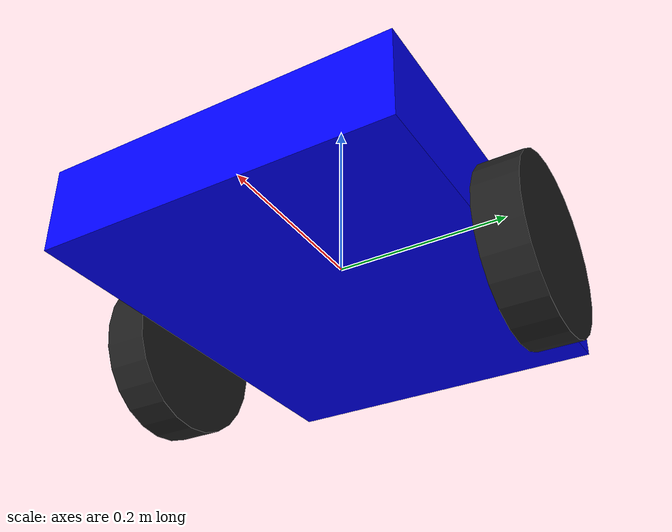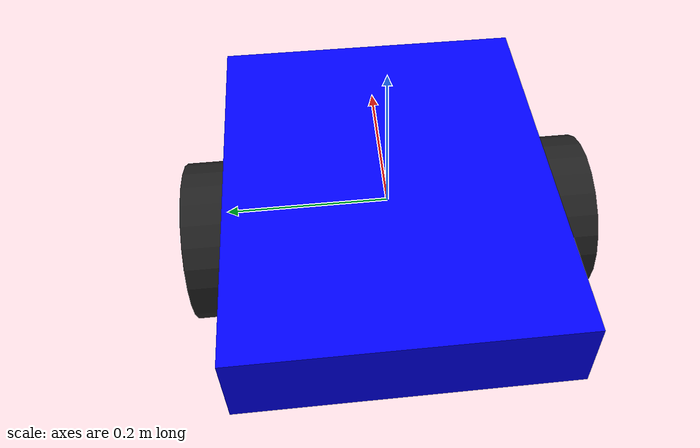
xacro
<robot name="simple_robot" xmlns:xacro="http://www.ros.org/wiki/xacro">

#using xacro macro for wheels only because code is same for wheels

<xacro:property name="wheel_radius" value="0.1"/>
<xacro:property name="wheel_width" value="0.05"/>
<xacro:property name="wheel_offset" value="0.225"/>

<link name="base_link">
    <visual>
        <origin xyz="0 0 0" rpy="0 0 0"/>
        <geometry>
            <box size="0.5 0.4 0.1"/>
        </geometry>
        <material name="blue">
            <color rgba="0 0 1 1"/>
        </material>
    </visual>
</link>

<xacro:macro name="wheel" params="name y_offset">
    <link name="${name}">
        <visual>
            <origin xyz="0 0 0" rpy="1.5708 0 0"/>
            <geometry>
                <cylinder radius="${wheel_radius}" length="${wheel_width}"/>
            </geometry>
            <material name="black"/>
        </visual>
    </link>

    <joint name="${name}_joint" type="continuous">
        <parent link="base_link"/>
        <child link="${name}"/>
        <origin xyz="0.0 ${y_offset} -0.05" rpy="0 0 0"/>
        <axis xyz="0 1 0"/>
    </joint>
</xacro:macro>

<xacro:wheel name="left_wheel" y_offset="${wheel_offset}"/>
<xacro:wheel name="right_wheel" y_offset="-${wheel_offset}"/>

</robot>
